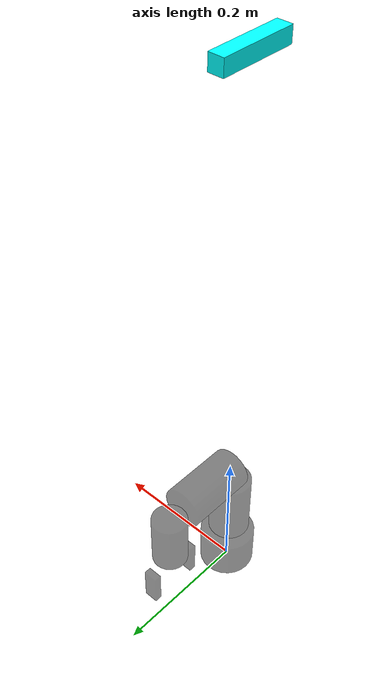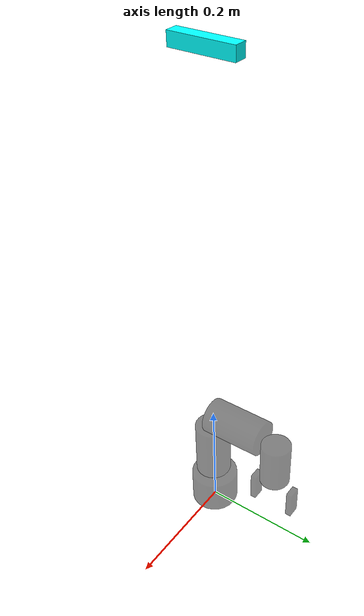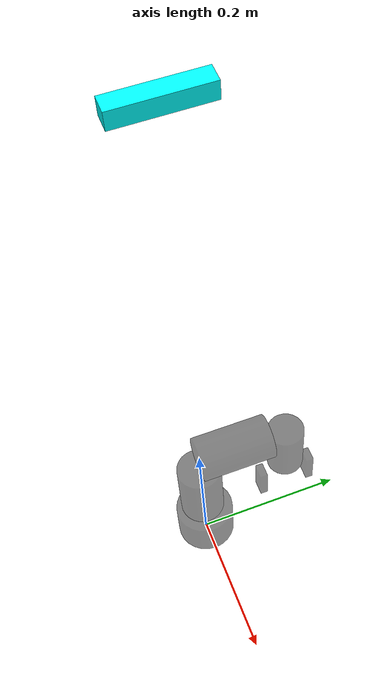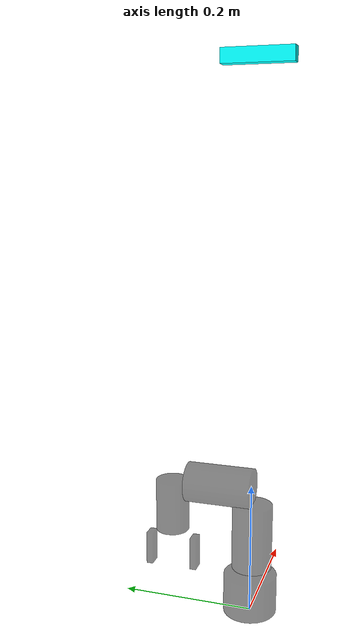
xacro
<?xml version="1.0"?>
<robot name="robot" xmlns:xacro="http://www.ros.org/wiki/xacro">

      <xacro:macro name="box_inertia" params="m x y z">
        <inertia  ixx="${m*(y*y+z*z)/12}" ixy = "0" ixz = "0"
                  iyy="${m*(x*x+z*z)/12}" iyz = "0"
                  izz="${m*(x*x+z*z)/12}" />
      </xacro:macro>

    <material name="orange">
        <color rgba="0.57 0.17 0.0 1" />
    </material>
    <material name="white">
        <color rgba="0.8 0.8 0.8 1.0" />
    </material>
    <material name="black">
        <color rgba="0 0 0 0.50" />
    </material>

  <link name="world"/>

  <joint name="fixed" type="fixed">
        <origin xyz="0 0 0.0" rpy="0 0 0"/>
        <parent link="world"/>
        <child link="base_link"/>
  </joint>

    <link name="X_base_link">
        <inertial>
            <origin xyz="0 0 0" rpy="0 0 0"/>
            <mass value="0.01"/>
            <box_inertia m="0.01" x="0.02" y="0.02" z="0.05"/>
        </inertial>
    </link>

    <link name="Y_base_link">
        <inertial>
            <origin xyz="0 0 0" rpy="0 0 0"/>
            <mass value="0.01"/>
            <box_inertia m="0.01" x="0.02" y="0.02" z="0.05"/>
        </inertial>
    </link>

    <link name="base_link">
        <inertial>
            <origin xyz="0 0 0" rpy="0 0 0"/>
            <mass value="0.05"/>
            <box_inertia m="0.05" x="0.02" y="0.02" z="0.05"/>
        </inertial>
    </link>

    <link name="robot_base_link">
        <collision>
            <geometry>
                <cylinder length="0.06" radius="0.04"/>
            </geometry>
            <material name="black" />
            <origin rpy="0 0 0" xyz="0 0 0.03" />
        </collision>
        <visual>
            <geometry>
                <cylinder length="0.06" radius="0.04"/>
            </geometry>
            <material name="black" />
            <origin rpy="0 0 0" xyz="0 0 0.03" />
        </visual>
        <inertial>
            <origin xyz="0 0 0" rpy="0 0 0"/>
            <mass value="0.05"/>
            <box_inertia m="0.05" x="0.02" y="0.02" z="0.05"/>
        </inertial>
    </link>

    <link name="shoulder_link">
        <collision>
            <geometry>
                <cylinder length="0.10" radius="0.03"/>
            </geometry>
            <material name="black" />
            <origin rpy="0 0 0" xyz="0 0 0.05" />
        </collision>
        <visual>
            <geometry>
                <cylinder length="0.10" radius="0.03"/>
            </geometry>
            <material name="black" />
            <origin rpy="0 0 0" xyz="0 0 0.05" />
        </visual>
        <inertial>
            <origin xyz="0 0 0" rpy="0 0 0"/>
            <mass value="0.05"/>
            <box_inertia m="0.05" x="0.02" y="0.02" z="0.05"/>
        </inertial>
    </link>

    <link name="elbow_link">
        <collision>
            <geometry>
                <cylinder length="0.10" radius="0.03"/>
            </geometry>
            <material name="black" />
            <origin rpy="0 0 0" xyz="0 0 0.05" />
        </collision>
        <visual>
            <geometry>
                <cylinder length="0.10" radius="0.03"/>
            </geometry>
            <material name="black" />
            <origin rpy="0 0 0" xyz="0 0 0.05" />
        </visual>
        <inertial>
            <origin xyz="0 0 0" rpy="0 0 0"/>
            <mass value="0.05"/>
            <box_inertia m="0.05" x="0.02" y="0.02" z="0.05"/>
        </inertial>
    </link>

    <link name="wrist_pitch_link">

        <inertial>
            <origin xyz="0 0 0" rpy="0 0 0"/>
            <mass value="0.05"/>
            <box_inertia m="0.05" x="0.02" y="0.02" z="0.05"/>
        </inertial>
    </link>

    <link name="wrist_roll_link">
        <collision>
            <geometry>
                <cylinder length="0.08" radius="0.025"/>
            </geometry>
            <material name="black" />
            <origin rpy="0 0 0" xyz="0 0 -0.02" />
        </collision>
        <visual>
            <geometry>
                <cylinder length="0.08" radius="0.025"/>
            </geometry>
            <material name="black" />
            <origin rpy="0 0 0" xyz="0 0 -0.02" />
        </visual>
        <inertial>
            <origin xyz="0 0 0" rpy="0 0 0"/>
            <mass value="0.05"/>
            <box_inertia m="0.05" x="0.02" y="0.02" z="0.05"/>
        </inertial>
    </link>

    <link name="left_gripper_link">
        <collision>
            <geometry>
                <box size="0.05 0.02 0.01"/>
            </geometry>
            <material name="black" />
            <origin rpy="0 -1.570808 0" xyz="0 0 -0.025" />
        </collision>
        <visual>
            <geometry>
                <box size="0.05 0.02 0.01"/>
            </geometry>
            <material name="black" />
            <origin rpy="0 -1.570808 0" xyz="0 0 -0.025" />
        </visual>
        <inertial>
            <origin xyz="0 0 0" rpy="0 0 0"/>
            <mass value="0.01"/>
            <box_inertia m="0.01" x="0.01" y="0.025" z="0.005"/>
        </inertial>
    </link>

    <link name="right_gripper_link">
        <collision>
            <geometry>
                <box size="0.05 0.02 0.01"/>
            </geometry>
            <material name="black" />
            <origin rpy="0 -1.570808 0" xyz="0 0 -0.025" />
        </collision>
        <visual>
            <geometry>
                <box size="0.05 0.02 0.01"/>
            </geometry>
            <material name="black" />
            <origin rpy="0 -1.570808 0" xyz="0 0 -0.025" />
        </visual>
        <inertial>
            <origin xyz="0 0 0" rpy="0 0 0"/>
            <mass value="0.01"/>
            <box_inertia m="0.01" x="0.01" y="0.025" z="0.005"/>
        </inertial>
    </link>

    <link name="camera_embedded_link">
        <inertial>
            <mass value="0.01" />
            <origin xyz="0 0 0" />
            <inertia ixx="0.001"  ixy="0.0"  ixz="0.0"
                    iyy="0.001"  iyz="0.0"
                    izz="0.001" />
        </inertial>
        <visual>
            <origin xyz="0 0 0" rpy="0 0 0"/>
            <geometry>
                <box size="0.02 0.10 0.02" />
            </geometry>
            <material name="Cyan">
                <color rgba="0 1.0 1.0 1.0"/>
            </material>
        </visual>
        <collision>
            <origin xyz="0 0 0" rpy="0 0 0"/>
            <geometry>
                <box size="0.02 0.1 0.02" />
            </geometry>
        </collision>
    </link>

    <joint name="X_base_joint" type="prismatic">
        <axis xyz="1 0 0" />
        <limit effort="100.0" lower="-5.0" upper="5.0" velocity="1.0" />
        <origin rpy="0 0 0" xyz="0 0 0" />
        <parent link="base_link" />
        <child link="X_base_link" />
    </joint>

    <joint name="Y_base_joint" type="prismatic">
        <axis xyz="0 1 0" />
        <limit effort="100.0" lower="-5.0" upper="5.0" velocity="1.0" />
        <origin rpy="0 0 0" xyz="0 0 0" />
        <parent link="X_base_link" />
        <child link="Y_base_link" />
    </joint>

    <joint name="base_joint" type="revolute">
        <axis xyz="0 0 1" />
        <limit effort="1000.0" lower="-3.1416" upper="3.1416" velocity="1.0" />
        <origin rpy="0 0 0" xyz="0 0 0" />
        <parent link="Y_base_link" />
        <child link="robot_base_link" />
    </joint>

    <joint name="shoulder_joint" type="revolute">
        <axis xyz="1 0 0" />
        <limit effort="1000.0" lower="0.2618" upper="2.8798" velocity="1.0" />
        <origin rpy="-1.570808 0 0" xyz="0 -.002 0.072" />
        <parent link="robot_base_link" />
        <child link="shoulder_link" />
    </joint>

    <joint name="elbow_joint" type="revolute">
        <axis xyz="1 0 0" />
        <limit effort="1000.0" lower="0" upper="3.1416" velocity="1.0" />
        <origin rpy="-1.570808 0 0" xyz="0 0 0.125" />
        <parent link="shoulder_link" />
        <child link="elbow_link" />
    </joint>

    <joint name="wrist_pitch_joint" type="revolute">
        <axis xyz="1 0 0" />
        <limit effort="1000.0" lower="0" upper="3.1416" velocity="1.0" />
        <origin rpy="-1.570808 0 0" xyz="0 0 0.125" />
        <parent link="elbow_link" />
        <child link="wrist_pitch_link" />
    </joint>

    <joint name="wrist_roll_joint" type="revolute">
        <axis xyz="0 0 -1" />
        <limit effort="1000.0" lower="0" upper="3.1416" velocity="1.0" />
        <origin rpy="0 0 1.570808" xyz="0 0.0 0.06" />
        <parent link="wrist_pitch_link" />
        <child link="wrist_roll_link" />
    </joint>

    <joint name="gripper_joint" type="prismatic">
        <axis xyz="-1 0 0" />
        <limit effort="1000.0" lower="0.02" upper="0.07" velocity="1.0" />
        <origin rpy="0 0 0" xyz="0.010 0 0.08" />
        <parent link="wrist_roll_link" />
        <child link="right_gripper_link" />
    </joint>

    <joint name="sub_gripper_joint" type="prismatic">
        <axis xyz="1 0 0" />
        <mimic joint="gripper_joint" />
        <limit effort="1000.0" lower="0.02" upper="0.07" velocity="1.0" />
        <origin rpy="0 0 0" xyz="-0.010 0 0.08" />
        <parent link="wrist_roll_link" />
        <child link="left_gripper_link" />
    </joint>

    <joint name="camera_joint" type="fixed">
        <origin xyz="0 0 0.8" rpy="1.5708 1.5708 -1.5708" />
        <parent link="robot_base_link" />
        <child link="camera_embedded_link"/>
    </joint>

    <xacro:include filename="$(find robot_description)/urdf/robot.gazebo" />

</robot>
